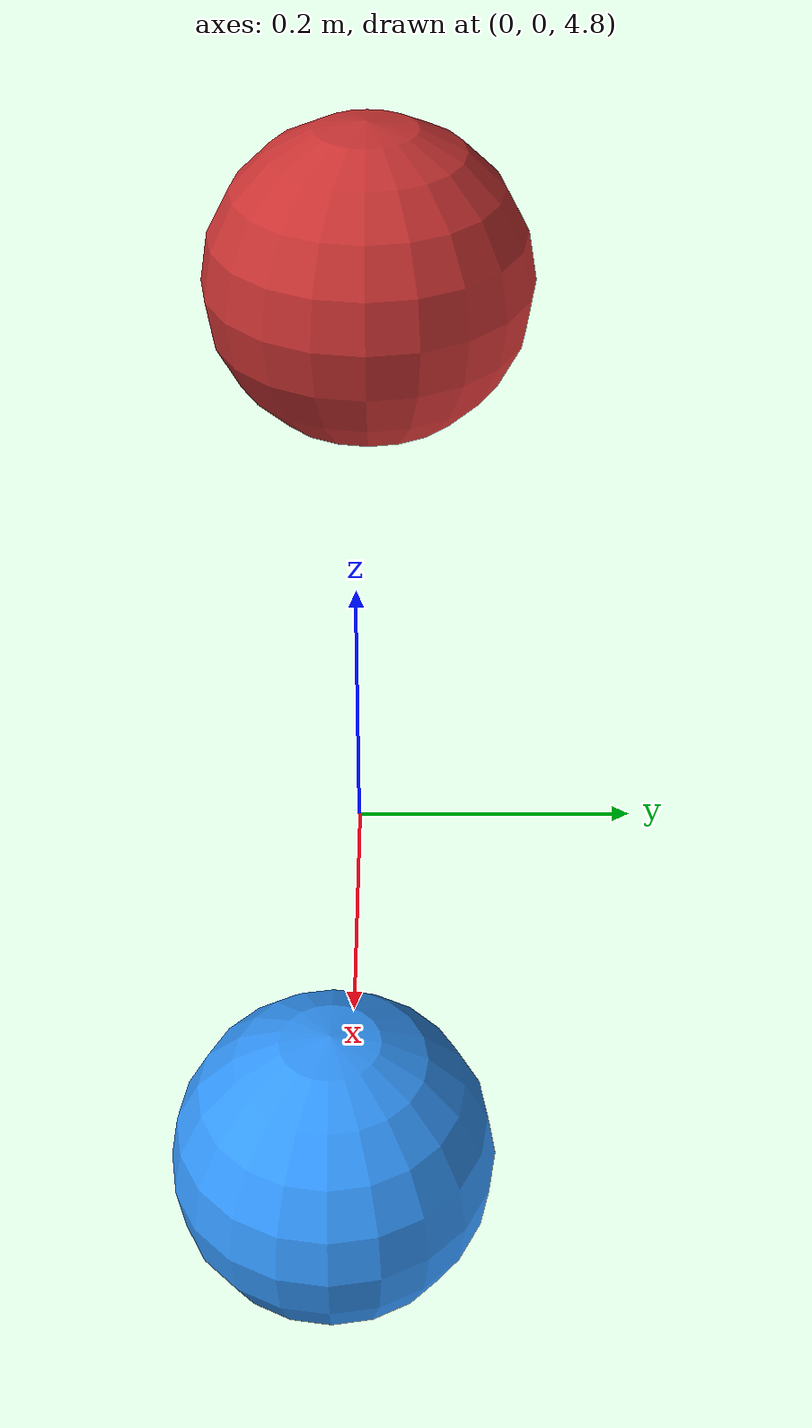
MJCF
<mujoco model="galileo_drop">
  <option timestep="0.002" gravity="0 0 -9.81" integrator="RK4"/>
  <!-- Gravity ON: this scenario is about whether mass affects fall rate -->

  <asset>
    <material name="ground" rgba="0.12 0.12 0.18 1" specular="0" shininess="0"/>
  </asset>

  <worldbody>
    <light pos="0 0 8" dir="0 0 -1" diffuse="0.8 0.8 0.8" castshadow="false"/>
    <light pos="0 -3 5" dir="0 0.5 -0.5" diffuse="0.4 0.4 0.5"/>

    <!-- Ground plane (visual only) -->
    <geom type="plane" size="5 5 0.01" material="ground" contype="0" conaffinity="0"/>

    <!-- Heavy ball (5 kg) — dropped from left side -->
    <body name="heavy_ball" pos="-0.5 0 5">
      <joint type="free" damping="0"/>
      <geom type="sphere" size="0.15" mass="5.0" rgba="0.8 0.2 0.2 1"
            contype="0" conaffinity="0"/>
    </body>

    <!-- Light ball (0.5 kg) — dropped from right side -->
    <body name="light_ball" pos="0.5 0 5">
      <joint type="free" damping="0"/>
      <geom type="sphere" size="0.08" mass="0.5" rgba="0.2 0.6 1.0 1"
            contype="0" conaffinity="0"/>
    </body>

    <!-- Cameras -->
    <camera name="side" pos="0 -6 3" xyaxes="1 0 0 0 0.3 1"/>
    <camera name="front" pos="0 -4 3" xyaxes="1 0 0 0 0.3 1"/>
  </worldbody>

  <!-- No actuators needed — both balls fall under gravity only -->

  <sensor>
    <framepos name="heavy_ball_pos" objtype="body" objname="heavy_ball"/>
    <framepos name="light_ball_pos" objtype="body" objname="light_ball"/>
    <framelinvel name="heavy_ball_vel" objtype="body" objname="heavy_ball"/>
    <framelinvel name="light_ball_vel" objtype="body" objname="light_ball"/>
  </sensor>
</mujoco>
